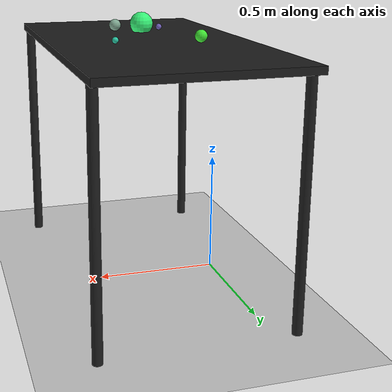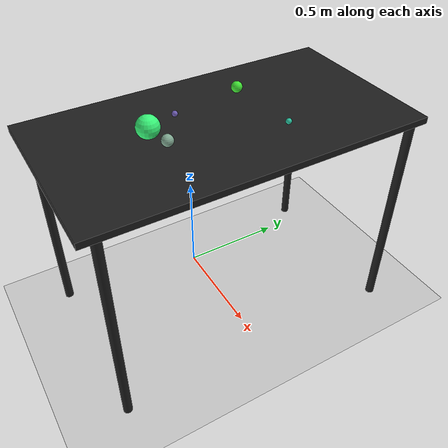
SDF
<?xml version="1.0" ?>
<sdf version="1.6">
  <world name="arm_world">
    <plugin filename="gz-sim-physics-system" name="gz::sim::systems::Physics">
      <engine>
        <filename>libgz-physics-bullet-featherstone-plugin.so</filename>
      </engine>
    </plugin>
    <plugin filename="gz-sim-user-commands-system" name="gz::sim::systems::UserCommands"/>
    <plugin filename="gz-sim-scene-broadcaster-system" name="gz::sim::systems::SceneBroadcaster"/>
    <plugin filename="gz-sim-sensors-system" name="gz::sim::systems::Sensors">
      <render_engine>ogre2</render_engine>
    </plugin>
    <gravity>0.0 0.0 -9.8</gravity>
    <scene>
      <shadows>false</shadows>
    </scene>
    <gui>
      <camera name="user_camera">
        <pose>0.75 -0.75 1.4 0 0.29 2.21</pose>
      </camera>
    </gui>
    <include>
      <uri>https://fuel.gazebosim.org/1.0/OpenRobotics/models/Sun</uri>
    </include>
    <model name="table">
      <static>true</static>
      <include>
        <uri>model://table</uri>
      </include>
      <pose>0.29 0 0 0 0 1.5708</pose>
    </model>
    <model name="ground_plane">
      <static>true</static>
      <link name="link">
        <collision name="collision">
          <geometry>
            <plane>
              <normal>0 0 1</normal>
            </plane>
          </geometry>
          <surface>
            <friction>
              <ode>
                <mu>1.0</mu>
                <mu2>1.0</mu2>
              </ode>
            </friction>
          </surface>
        </collision>
        <visual name="visual">
          <geometry>
            <plane>
              <normal>0 0 1</normal>
              <size>100 100</size>
            </plane>
          </geometry>
          <material>
            <ambient>0.8 0.8 0.8 1</ambient>
            <diffuse>0.8 0.8 0.8 1</diffuse>
            <specular>0.8 0.8 0.8 1</specular>
          </material>
        </visual>
      </link>
    </model>
    <model name="sphere_m_0">
      <pose>0.128 0.178 1.05 0 0 2.61</pose>
      <link name="sphere_m_0_link">
        <inertial>
          <mass>0.05</mass>
          <inertia>
            <ixx>2.04e-7</ixx>
            <iyy>2.04e-7</iyy>
            <izz>3.9e-8</izz>
            <ixy>0</ixy>
            <ixz>0</ixz>
            <iyz>0</iyz>
          </inertia>
        </inertial>
        <collision name="sphere_m_0_collision">
          <geometry>
            <sphere>
              <radius>0.025</radius>
            </sphere>
          </geometry>
          <surface>
            <friction>
              <ode>
                <mu>0.8</mu>
                <mu2>0.8</mu2>
                <fdir1>0 0 1</fdir1>
                <slip1>0.001</slip1>
                <slip2>0.001</slip2>
              </ode>
              <torsional>
                <coefficient>0.1</coefficient>
                <surface_radius>0.015</surface_radius>
                <use_patch_radius>true</use_patch_radius>
              </torsional>
            </friction>
            <contact>
              <ode>
                <kp>1e5</kp>
                <kd>10</kd>
                <max_vel>0.1</max_vel>
                <min_depth>0.001</min_depth>
                <soft_cfm>0.01</soft_cfm>
                <soft_erp>0.2</soft_erp>
              </ode>
            </contact>
            <bounce>
              <restitution_coefficient>0.2</restitution_coefficient>
              <threshold>0.01</threshold>
            </bounce>
          </surface>
        </collision>
        <visual name="sphere_m_0_visual">
          <geometry>
            <sphere>
              <radius>0.025</radius>
            </sphere>
          </geometry>
          <material>
            <ambient>0.26 0.91 0.21 1</ambient>
            <diffuse>0.26 0.91 0.21 1</diffuse>
          </material>
        </visual>
        <velocity_decay>
          <linear>1</linear>
          <angular>1</angular>
        </velocity_decay>
      </link>
    </model>
    <model name="sphere_l_1">
      <pose>0.236 -0.292 1.05 0 0 4.02</pose>
      <link name="sphere_l_1_link">
        <inertial>
          <mass>0.05</mass>
          <inertia>
            <ixx>2.04e-7</ixx>
            <iyy>2.04e-7</iyy>
            <izz>3.9e-8</izz>
            <ixy>0</ixy>
            <ixz>0</ixz>
            <iyz>0</iyz>
          </inertia>
        </inertial>
        <collision name="sphere_l_1_collision">
          <geometry>
            <sphere>
              <radius>0.05</radius>
            </sphere>
          </geometry>
          <surface>
            <friction>
              <ode>
                <mu>0.8</mu>
                <mu2>0.8</mu2>
                <fdir1>0 0 1</fdir1>
                <slip1>0.001</slip1>
                <slip2>0.001</slip2>
              </ode>
              <torsional>
                <coefficient>0.1</coefficient>
                <surface_radius>0.015</surface_radius>
                <use_patch_radius>true</use_patch_radius>
              </torsional>
            </friction>
            <contact>
              <ode>
                <kp>1e5</kp>
                <kd>10</kd>
                <max_vel>0.1</max_vel>
                <min_depth>0.001</min_depth>
                <soft_cfm>0.01</soft_cfm>
                <soft_erp>0.2</soft_erp>
              </ode>
            </contact>
            <bounce>
              <restitution_coefficient>0.2</restitution_coefficient>
              <threshold>0.01</threshold>
            </bounce>
          </surface>
        </collision>
        <visual name="sphere_l_1_visual">
          <geometry>
            <sphere>
              <radius>0.05</radius>
            </sphere>
          </geometry>
          <material>
            <ambient>0.22 0.98 0.48 1</ambient>
            <diffuse>0.22 0.98 0.48 1</diffuse>
          </material>
        </visual>
        <velocity_decay>
          <linear>1</linear>
          <angular>1</angular>
        </velocity_decay>
      </link>
    </model>
    <model name="sphere_s_2">
      <pose>0.476 0.203 1.05 0 0 0.47</pose>
      <link name="sphere_s_2_link">
        <inertial>
          <mass>0.05</mass>
          <inertia>
            <ixx>2.04e-7</ixx>
            <iyy>2.04e-7</iyy>
            <izz>3.9e-8</izz>
            <ixy>0</ixy>
            <ixz>0</ixz>
            <iyz>0</iyz>
          </inertia>
        </inertial>
        <collision name="sphere_s_2_collision">
          <geometry>
            <sphere>
              <radius>0.0125</radius>
            </sphere>
          </geometry>
          <surface>
            <friction>
              <ode>
                <mu>0.8</mu>
                <mu2>0.8</mu2>
                <fdir1>0 0 1</fdir1>
                <slip1>0.001</slip1>
                <slip2>0.001</slip2>
              </ode>
              <torsional>
                <coefficient>0.1</coefficient>
                <surface_radius>0.015</surface_radius>
                <use_patch_radius>true</use_patch_radius>
              </torsional>
            </friction>
            <contact>
              <ode>
                <kp>1e5</kp>
                <kd>10</kd>
                <max_vel>0.1</max_vel>
                <min_depth>0.001</min_depth>
                <soft_cfm>0.01</soft_cfm>
                <soft_erp>0.2</soft_erp>
              </ode>
            </contact>
            <bounce>
              <restitution_coefficient>0.2</restitution_coefficient>
              <threshold>0.01</threshold>
            </bounce>
          </surface>
        </collision>
        <visual name="sphere_s_2_visual">
          <geometry>
            <sphere>
              <radius>0.0125</radius>
            </sphere>
          </geometry>
          <material>
            <ambient>0.16 0.78 0.64 1</ambient>
            <diffuse>0.16 0.78 0.64 1</diffuse>
          </material>
        </visual>
        <velocity_decay>
          <linear>1</linear>
          <angular>1</angular>
        </velocity_decay>
      </link>
    </model>
    <model name="sphere_s_3">
      <pose>0.198 -0.156 1.05 0 0 5.27</pose>
      <link name="sphere_s_3_link">
        <inertial>
          <mass>0.05</mass>
          <inertia>
            <ixx>2.04e-7</ixx>
            <iyy>2.04e-7</iyy>
            <izz>3.9e-8</izz>
            <ixy>0</ixy>
            <ixz>0</ixz>
            <iyz>0</iyz>
          </inertia>
        </inertial>
        <collision name="sphere_s_3_collision">
          <geometry>
            <sphere>
              <radius>0.0125</radius>
            </sphere>
          </geometry>
          <surface>
            <friction>
              <ode>
                <mu>0.8</mu>
                <mu2>0.8</mu2>
                <fdir1>0 0 1</fdir1>
                <slip1>0.001</slip1>
                <slip2>0.001</slip2>
              </ode>
              <torsional>
                <coefficient>0.1</coefficient>
                <surface_radius>0.015</surface_radius>
                <use_patch_radius>true</use_patch_radius>
              </torsional>
            </friction>
            <contact>
              <ode>
                <kp>1e5</kp>
                <kd>10</kd>
                <max_vel>0.1</max_vel>
                <min_depth>0.001</min_depth>
                <soft_cfm>0.01</soft_cfm>
                <soft_erp>0.2</soft_erp>
              </ode>
            </contact>
            <bounce>
              <restitution_coefficient>0.2</restitution_coefficient>
              <threshold>0.01</threshold>
            </bounce>
          </surface>
        </collision>
        <visual name="sphere_s_3_visual">
          <geometry>
            <sphere>
              <radius>0.0125</radius>
            </sphere>
          </geometry>
          <material>
            <ambient>0.45 0.38 0.73 1</ambient>
            <diffuse>0.45 0.38 0.73 1</diffuse>
          </material>
        </visual>
        <velocity_decay>
          <linear>1</linear>
          <angular>1</angular>
        </velocity_decay>
      </link>
    </model>
    <model name="sphere_m_4">
      <pose>0.361 -0.269 1.05 0 0 2.56</pose>
      <link name="sphere_m_4_link">
        <inertial>
          <mass>0.05</mass>
          <inertia>
            <ixx>2.04e-7</ixx>
            <iyy>2.04e-7</iyy>
            <izz>3.9e-8</izz>
            <ixy>0</ixy>
            <ixz>0</ixz>
            <iyz>0</iyz>
          </inertia>
        </inertial>
        <collision name="sphere_m_4_collision">
          <geometry>
            <sphere>
              <radius>0.025</radius>
            </sphere>
          </geometry>
          <surface>
            <friction>
              <ode>
                <mu>0.8</mu>
                <mu2>0.8</mu2>
                <fdir1>0 0 1</fdir1>
                <slip1>0.001</slip1>
                <slip2>0.001</slip2>
              </ode>
              <torsional>
                <coefficient>0.1</coefficient>
                <surface_radius>0.015</surface_radius>
                <use_patch_radius>true</use_patch_radius>
              </torsional>
            </friction>
            <contact>
              <ode>
                <kp>1e5</kp>
                <kd>10</kd>
                <max_vel>0.1</max_vel>
                <min_depth>0.001</min_depth>
                <soft_cfm>0.01</soft_cfm>
                <soft_erp>0.2</soft_erp>
              </ode>
            </contact>
            <bounce>
              <restitution_coefficient>0.2</restitution_coefficient>
              <threshold>0.01</threshold>
            </bounce>
          </surface>
        </collision>
        <visual name="sphere_m_4_visual">
          <geometry>
            <sphere>
              <radius>0.025</radius>
            </sphere>
          </geometry>
          <material>
            <ambient>0.51 0.67 0.58 1</ambient>
            <diffuse>0.51 0.67 0.58 1</diffuse>
          </material>
        </visual>
        <velocity_decay>
          <linear>1</linear>
          <angular>1</angular>
        </velocity_decay>
      </link>
    </model>
  </world>
</sdf>

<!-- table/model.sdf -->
<sdf version="1.5">
  <model name="table">
    <static>true</static>
    <link name="link">
      <collision name="surface">
        <pose>0 0 1.0 0 0 0</pose>
        <geometry>
          <box>
            <size>1.5 0.8 0.03</size>
          </box>
        </geometry>
        <surface>
          <friction>
            <ode>
              <mu>0.6</mu>
              <mu2>0.6</mu2>
            </ode>
          </friction>
        </surface>
      </collision>
      <visual name="surface">
        <pose>0 0 1.0 0 0 0</pose>
        <geometry>
          <box>
            <size>1.5 0.8 0.03</size>
          </box>
        </geometry>
        <material>
          <script>
            <uri>file://media/materials/scripts/gazebo.material</uri>
            <name>Gazebo/Black</name>
          </script>
        </material>
      </visual>
      <collision name="front_left_leg">
        <pose>0.68 0.38 0.5 0 0 0</pose>
        <geometry>
          <cylinder>
            <radius>0.02</radius>
            <length>1.0</length>
          </cylinder>
        </geometry>
      </collision>
      <visual name="front_left_leg">
        <pose>0.68 0.38 0.5 0 0 0</pose>
        <geometry>
          <cylinder>
            <radius>0.02</radius>
            <length>1.0</length>
          </cylinder>
        </geometry>
        <material>
          <script>
            <uri>file://media/materials/scripts/gazebo.material</uri>
            <name>Gazebo/Black</name>
          </script>
        </material>
      </visual>
      <collision name="front_right_leg">
        <pose>0.68 -0.38 0.5 0 0 0</pose>
        <geometry>
          <cylinder>
            <radius>0.02</radius>
            <length>1.0</length>
          </cylinder>
        </geometry>
      </collision>
      <visual name="front_right_leg">
        <pose>0.68 -0.38 0.5 0 0 0</pose>
        <geometry>
          <cylinder>
            <radius>0.02</radius>
            <length>1.0</length>
          </cylinder>
        </geometry>
        <material>
          <script>
            <uri>file://media/materials/scripts/gazebo.material</uri>
            <name>Gazebo/Black</name>
          </script>
        </material>
      </visual>
      <collision name="back_right_leg">
        <pose>-0.68 -0.38 0.5 0 0 0</pose>
        <geometry>
          <cylinder>
            <radius>0.02</radius>
            <length>1.0</length>
          </cylinder>
        </geometry>
      </collision>
      <visual name="back_right_leg">
        <pose>-0.68 -0.38 0.5 0 0 0</pose>
        <geometry>
          <cylinder>
            <radius>0.02</radius>
            <length>1.0</length>
          </cylinder>
        </geometry>
        <material>
          <script>
            <uri>file://media/materials/scripts/gazebo.material</uri>
            <name>Gazebo/Black</name>
          </script>
        </material>
      </visual>
      <collision name="back_left_leg">
        <pose>-0.68 0.38 0.5 0 0 0</pose>
        <geometry>
          <cylinder>
            <radius>0.02</radius>
            <length>1.0</length>
          </cylinder>
        </geometry>
      </collision>
      <visual name="back_left_leg">
        <pose>-0.68 0.38 0.5 0 0 0</pose>
        <geometry>
          <cylinder>
            <radius>0.02</radius>
            <length>1.0</length>
          </cylinder>
        </geometry>
        <material>
          <script>
            <uri>file://media/materials/scripts/gazebo.material</uri>
            <name>Gazebo/Black</name>
          </script>
        </material>
      </visual>
    </link>
  </model>
</sdf>
